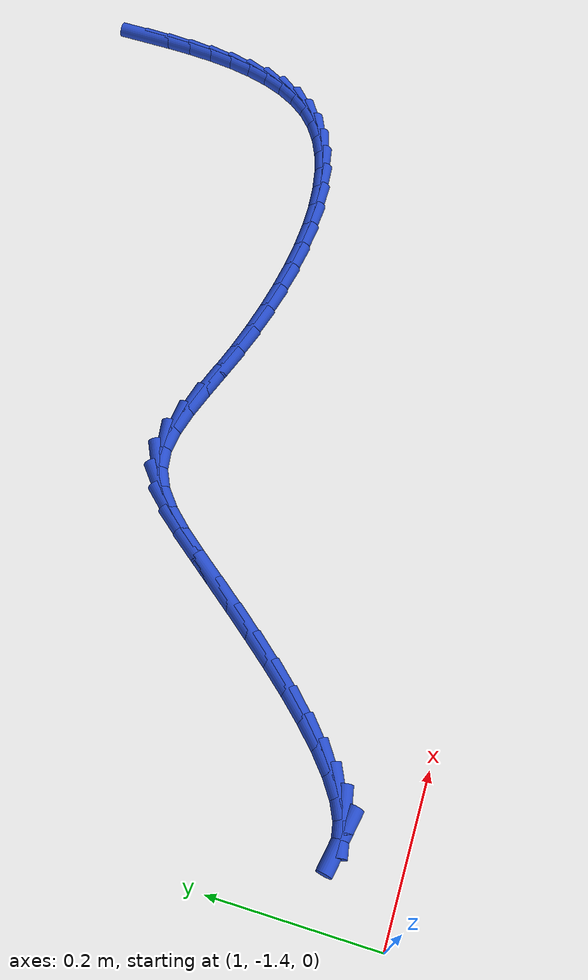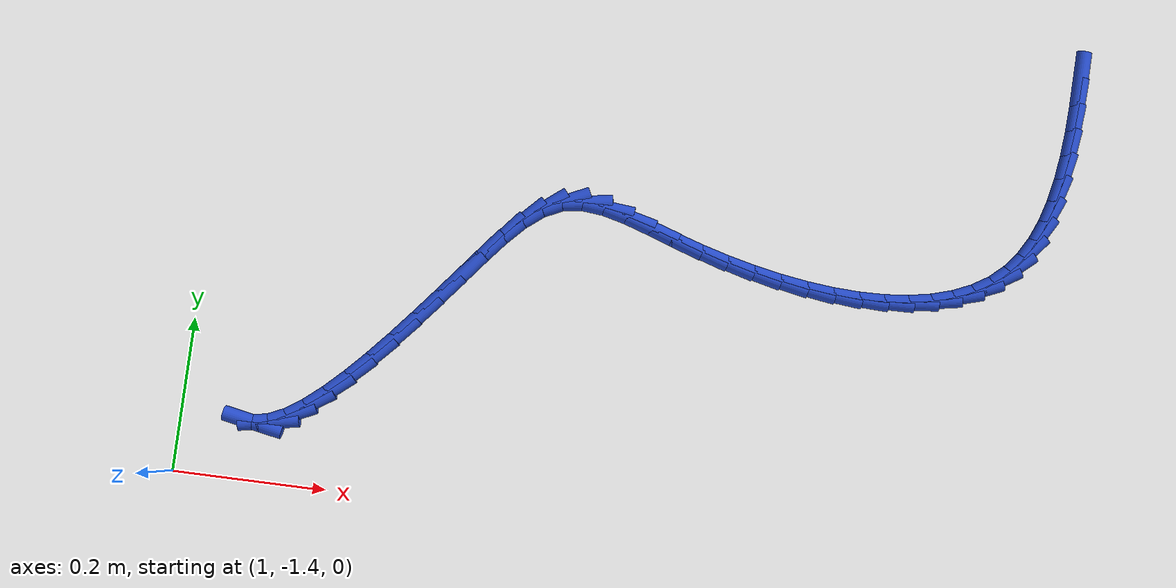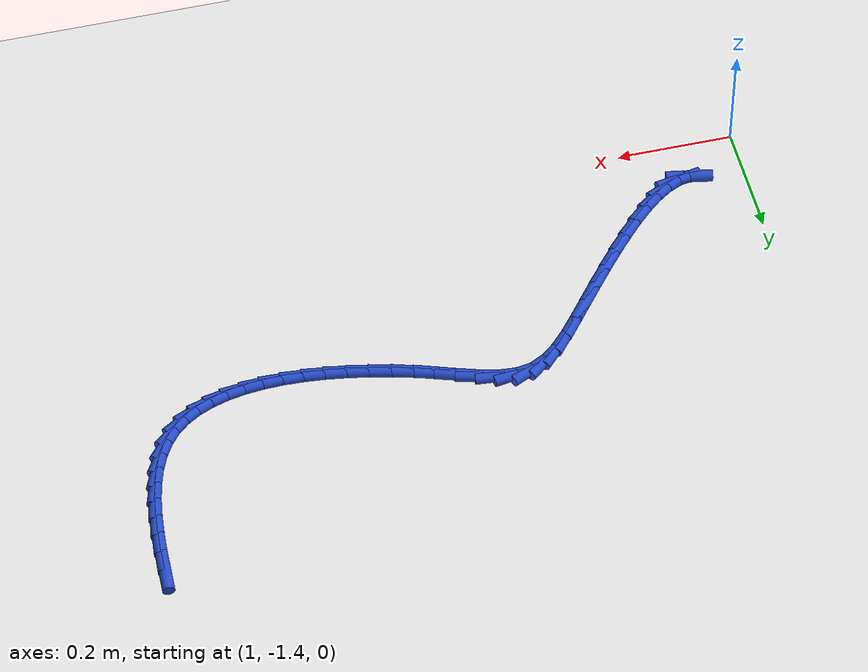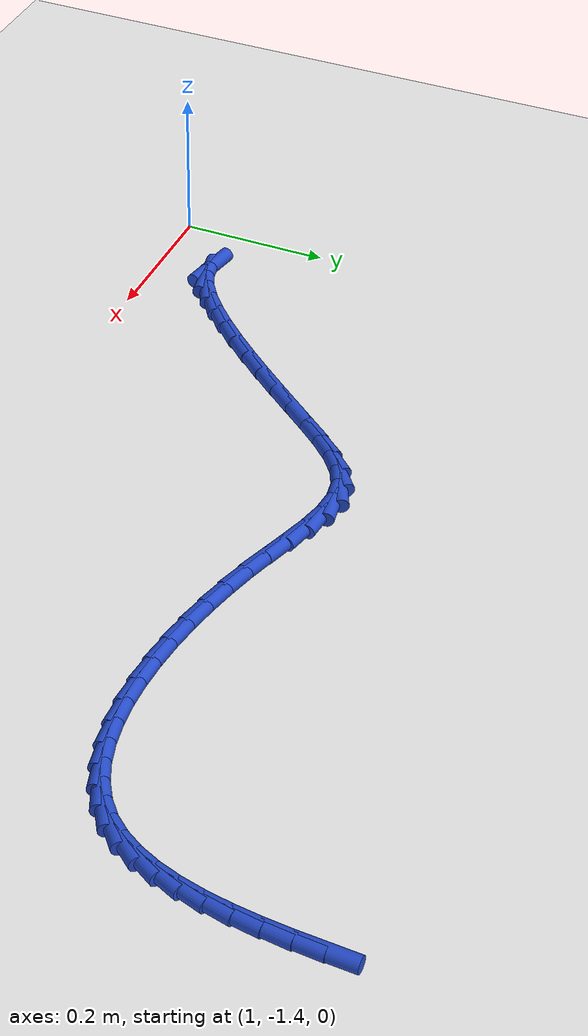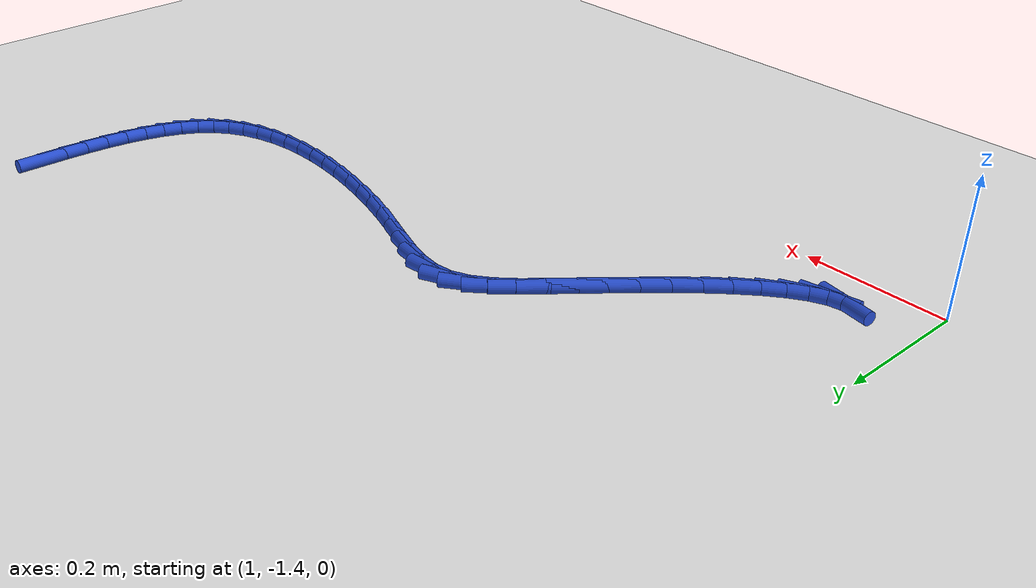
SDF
<sdf version="1.6">
 <world name="default">
  <model name="ground_plane">
   <static>1</static>
   <link name="link">
    <collision name="collision">
     <geometry><plane><normal>0 0 1</normal><size>100 100</size></plane></geometry>
     <surface><friction><ode><mu>100</mu><mu2>50</mu2></ode></friction></surface>
    </collision>
    <visual name="visual">
     <cast_shadows>0</cast_shadows>
     <geometry><plane><normal>0 0 1</normal><size>100 100</size></plane></geometry>
     <material>
      <script><uri>file://media/materials/scripts/gazebo.material</uri><name>Gazebo/WhiteGlow</name></script>
     </material>
    </visual>
   </link>
  </model>
  <model name="line">
   <link name="link_150">
    <pose>2.1129412333218065 -0.7456355610300089 0.01 0 1.57 1.546474756460688</pose>
    <collision name="collision">
     <geometry><cylinder><radius>0.01</radius><length>0.08</length></cylinder></geometry>
    </collision>
    <visual name="visual">
     <material>
      <script><name>Gazebo/Blue</name><uri>file://media/materials/scripts/gazebo.material</uri></script>
     </material>
     <geometry><cylinder><radius>0.01</radius><length>0.08</length></cylinder></geometry>
    </visual>
   </link>
   <link name="link_151">
    <pose>2.1120924041627407 -0.7805289404053501 0.01 0 1.57 1.517941068026042</pose>
    <collision name="collision">
     <geometry><cylinder><radius>0.01</radius><length>0.08</length></cylinder></geometry>
    </collision>
    <visual name="visual">
     <material>
      <script><name>Gazebo/Blue</name><uri>file://media/materials/scripts/gazebo.material</uri></script>
     </material>
     <geometry><cylinder><radius>0.01</radius><length>0.08</length></cylinder></geometry>
    </visual>
   </link>
   <link name="link_152">
    <pose>2.1102846867259415 -0.8146983640644665 0.01 0 1.57 1.478950274529012</pose>
    <collision name="collision">
     <geometry><cylinder><radius>0.01</radius><length>0.08</length></cylinder></geometry>
    </collision>
    <visual name="visual">
     <material>
      <script><name>Gazebo/Blue</name><uri>file://media/materials/scripts/gazebo.material</uri></script>
     </material>
     <geometry><cylinder><radius>0.01</radius><length>0.08</length></cylinder></geometry>
    </visual>
   </link>
   <link name="link_153">
    <pose>2.107233101355908 -0.8478298892119022 0.01 0 1.57 1.4276512588641737</pose>
    <collision name="collision">
     <geometry><cylinder><radius>0.01</radius><length>0.08</length></cylinder></geometry>
    </collision>
    <visual name="visual">
     <material>
      <script><name>Gazebo/Blue</name><uri>file://media/materials/scripts/gazebo.material</uri></script>
     </material>
     <geometry><cylinder><radius>0.01</radius><length>0.08</length></cylinder></geometry>
    </visual>
   </link>
   <link name="link_154">
    <pose>2.102652668397136 -0.8796095730522001 0.01 0 1.57 1.3615680062993154</pose>
    <collision name="collision">
     <geometry><cylinder><radius>0.01</radius><length>0.08</length></cylinder></geometry>
    </collision>
    <visual name="visual">
     <material>
      <script><name>Gazebo/Blue</name><uri>file://media/materials/scripts/gazebo.material</uri></script>
     </material>
     <geometry><cylinder><radius>0.01</radius><length>0.08</length></cylinder></geometry>
    </visual>
   </link>
   <link name="link_155">
    <pose>2.096258408194124 -0.909723472789904 0.01 0 1.57 1.2776181634800723</pose>
    <collision name="collision">
     <geometry><cylinder><radius>0.01</radius><length>0.08</length></cylinder></geometry>
    </collision>
    <visual name="visual">
     <material>
      <script><name>Gazebo/Blue</name><uri>file://media/materials/scripts/gazebo.material</uri></script>
     </material>
     <geometry><cylinder><radius>0.01</radius><length>0.08</length></cylinder></geometry>
    </visual>
   </link>
   <link name="link_156">
    <pose>2.08776534109137 -0.9378576456295582 0.01 0 1.57 1.1723842745373065</pose>
    <collision name="collision">
     <geometry><cylinder><radius>0.01</radius><length>0.08</length></cylinder></geometry>
    </collision>
    <visual name="visual">
     <material>
      <script><name>Gazebo/Blue</name><uri>file://media/materials/scripts/gazebo.material</uri></script>
     </material>
     <geometry><cylinder><radius>0.01</radius><length>0.08</length></cylinder></geometry>
    </visual>
   </link>
   <link name="link_157">
    <pose>2.076888487433372 -0.9636981487757048 0.01 0 1.57 1.0429434872162242</pose>
    <collision name="collision">
     <geometry><cylinder><radius>0.01</radius><length>0.08</length></cylinder></geometry>
    </collision>
    <visual name="visual">
     <material>
      <script><name>Gazebo/Blue</name><uri>file://media/materials/scripts/gazebo.material</uri></script>
     </material>
     <geometry><cylinder><radius>0.01</radius><length>0.08</length></cylinder></geometry>
    </visual>
   </link>
   <link name="link_158">
    <pose>2.0633428675646277 -0.9869310394328884 0.01 0 1.57 0.8885863723857401</pose>
    <collision name="collision">
     <geometry><cylinder><radius>0.01</radius><length>0.08</length></cylinder></geometry>
    </collision>
    <visual name="visual">
     <material>
      <script><name>Gazebo/Blue</name><uri>file://media/materials/scripts/gazebo.material</uri></script>
     </material>
     <geometry><cylinder><radius>0.01</radius><length>0.08</length></cylinder></geometry>
    </visual>
   </link>
   <link name="link_159">
    <pose>2.0468435018296347 -1.007242374805652 0.01 0 1.57 0.7158832035427021</pose>
    <collision name="collision">
     <geometry><cylinder><radius>0.01</radius><length>0.08</length></cylinder></geometry>
    </collision>
    <visual name="visual">
     <material>
      <script><name>Gazebo/Blue</name><uri>file://media/materials/scripts/gazebo.material</uri></script>
     </material>
     <geometry><cylinder><radius>0.01</radius><length>0.08</length></cylinder></geometry>
    </visual>
   </link>
   <link name="link_160">
    <pose>2.0271608304048225 -1.0243625676851322 0.01 0 1.57 0.5512406583729766</pose>
    <collision name="collision">
     <geometry><cylinder><radius>0.01</radius><length>0.08</length></cylinder></geometry>
    </collision>
    <visual name="visual">
     <material>
      <script><name>Gazebo/Blue</name><uri>file://media/materials/scripts/gazebo.material</uri></script>
     </material>
     <geometry><cylinder><radius>0.01</radius><length>0.08</length></cylinder></geometry>
    </visual>
   </link>
   <link name="link_161">
    <pose>2.00444686297409 -1.0383274222492653 0.01 0 1.57 0.4073539535871365</pose>
    <collision name="collision">
     <geometry><cylinder><radius>0.01</radius><length>0.08</length></cylinder></geometry>
    </collision>
    <visual name="visual">
     <material>
      <script><name>Gazebo/Blue</name><uri>file://media/materials/scripts/gazebo.material</uri></script>
     </material>
     <geometry><cylinder><radius>0.01</radius><length>0.08</length></cylinder></geometry>
    </visual>
   </link>
   <link name="link_162">
    <pose>1.979014250299011 -1.0493013127019648 0.01 0 1.57 0.28473135675628813</pose>
    <collision name="collision">
     <geometry><cylinder><radius>0.01</radius><length>0.08</length></cylinder></geometry>
    </collision>
    <visual name="visual">
     <material>
      <script><name>Gazebo/Blue</name><uri>file://media/materials/scripts/gazebo.material</uri></script>
     </material>
     <geometry><cylinder><radius>0.01</radius><length>0.08</length></cylinder></geometry>
    </visual>
   </link>
   <link name="link_163">
    <pose>1.9511762032568567 -1.0574490615390209 0.01 0 1.57 0.18129434952298823</pose>
    <collision name="collision">
     <geometry><cylinder><radius>0.01</radius><length>0.08</length></cylinder></geometry>
    </collision>
    <visual name="visual">
     <material>
      <script><name>Gazebo/Blue</name><uri>file://media/materials/scripts/gazebo.material</uri></script>
     </material>
     <geometry><cylinder><radius>0.01</radius><length>0.08</length></cylinder></geometry>
    </visual>
   </link>
   <link name="link_164">
    <pose>1.9212459327248992 -1.0629354912562228 0.01 0 1.57 0.0940140746038788</pose>
    <collision name="collision">
     <geometry><cylinder><radius>0.01</radius><length>0.08</length></cylinder></geometry>
    </collision>
    <visual name="visual">
     <material>
      <script><name>Gazebo/Blue</name><uri>file://media/materials/scripts/gazebo.material</uri></script>
     </material>
     <geometry><cylinder><radius>0.01</radius><length>0.08</length></cylinder></geometry>
    </visual>
   </link>
   <link name="link_165">
    <pose>1.8895366495804098 -1.0659254243493597 0.01 0 1.57 0.019839364430289108</pose>
    <collision name="collision">
     <geometry><cylinder><radius>0.01</radius><length>0.08</length></cylinder></geometry>
    </collision>
    <visual name="visual">
     <material>
      <script><name>Gazebo/Blue</name><uri>file://media/materials/scripts/gazebo.material</uri></script>
     </material>
     <geometry><cylinder><radius>0.01</radius><length>0.08</length></cylinder></geometry>
    </visual>
   </link>
   <link name="link_166">
    <pose>1.8563615647006615 -1.0665836833142208 0.01 0 1.57 -0.04391857488852035</pose>
    <collision name="collision">
     <geometry><cylinder><radius>0.01</radius><length>0.08</length></cylinder></geometry>
    </collision>
    <visual name="visual">
     <material>
      <script><name>Gazebo/Blue</name><uri>file://media/materials/scripts/gazebo.material</uri></script>
     </material>
     <geometry><cylinder><radius>0.01</radius><length>0.08</length></cylinder></geometry>
    </visual>
   </link>
   <link name="link_167">
    <pose>1.8220338889629257 -1.065075090646596 0.01 0 1.57 -0.09949736617803581</pose>
    <collision name="collision">
     <geometry><cylinder><radius>0.01</radius><length>0.08</length></cylinder></geometry>
    </collision>
    <visual name="visual">
     <material>
      <script><name>Gazebo/Blue</name><uri>file://media/materials/scripts/gazebo.material</uri></script>
     </material>
     <geometry><cylinder><radius>0.01</radius><length>0.08</length></cylinder></geometry>
    </visual>
   </link>
   <link name="link_168">
    <pose>1.786866833244475 -1.0615644688422745 0.01 0 1.57 -0.14872128859628608</pose>
    <collision name="collision">
     <geometry><cylinder><radius>0.01</radius><length>0.08</length></cylinder></geometry>
    </collision>
    <visual name="visual">
     <material>
      <script><name>Gazebo/Blue</name><uri>file://media/materials/scripts/gazebo.material</uri></script>
     </material>
     <geometry><cylinder><radius>0.01</radius><length>0.08</length></cylinder></geometry>
    </visual>
   </link>
   <link name="link_169">
    <pose>1.75117360842258 -1.0562166403970457 0.01 0 1.57 -0.19307977196396972</pose>
    <collision name="collision">
     <geometry><cylinder><radius>0.01</radius><length>0.08</length></cylinder></geometry>
    </collision>
    <visual name="visual">
     <material>
      <script><name>Gazebo/Blue</name><uri>file://media/materials/scripts/gazebo.material</uri></script>
     </material>
     <geometry><cylinder><radius>0.01</radius><length>0.08</length></cylinder></geometry>
    </visual>
   </link>
   <link name="link_170">
    <pose>1.7152674253745133 -1.0491964278066983 0.01 0 1.57 -0.2338106481693453</pose>
    <collision name="collision">
     <geometry><cylinder><radius>0.01</radius><length>0.08</length></cylinder></geometry>
    </collision>
    <visual name="visual">
     <material>
      <script><name>Gazebo/Blue</name><uri>file://media/materials/scripts/gazebo.material</uri></script>
     </material>
     <geometry><cylinder><radius>0.01</radius><length>0.08</length></cylinder></geometry>
    </visual>
   </link>
   <link name="link_171">
    <pose>1.6794614949775473 -1.0406686535670229 0.01 0 1.57 -0.2719767002915267</pose>
    <collision name="collision">
     <geometry><cylinder><radius>0.01</radius><length>0.08</length></cylinder></geometry>
    </collision>
    <visual name="visual">
     <material>
      <script><name>Gazebo/Blue</name><uri>file://media/materials/scripts/gazebo.material</uri></script>
     </material>
     <geometry><cylinder><radius>0.01</radius><length>0.08</length></cylinder></geometry>
    </visual>
   </link>
   <link name="link_172">
    <pose>1.6440690281089516 -1.0307981401738076 0.01 0 1.57 -0.3085235119712661</pose>
    <collision name="collision">
     <geometry><cylinder><radius>0.01</radius><length>0.08</length></cylinder></geometry>
    </collision>
    <visual name="visual">
     <material>
      <script><name>Gazebo/Blue</name><uri>file://media/materials/scripts/gazebo.material</uri></script>
     </material>
     <geometry><cylinder><radius>0.01</radius><length>0.08</length></cylinder></geometry>
    </visual>
   </link>
   <link name="link_173">
    <pose>1.6094032212393148 -1.0197501376978135 0.01 0 1.57 -0.33376533481258314</pose>
    <collision name="collision">
     <geometry><cylinder><radius>0.01</radius><length>0.08</length></cylinder></geometry>
    </collision>
    <visual name="visual">
     <material>
      <script><name>Gazebo/Blue</name><uri>file://media/materials/scripts/gazebo.material</uri></script>
     </material>
     <geometry><cylinder><radius>0.01</radius><length>0.08</length></cylinder></geometry>
    </visual>
   </link>
   <link name="link_174">
    <pose>1.575763920050237 -1.0080861333035158 0.01 0 1.57 -0.3163152477539752</pose>
    <collision name="collision">
     <geometry><cylinder><radius>0.01</radius><length>0.08</length></cylinder></geometry>
    </collision>
    <visual name="visual">
     <material>
      <script><name>Gazebo/Blue</name><uri>file://media/materials/scripts/gazebo.material</uri></script>
     </material>
     <geometry><cylinder><radius>0.01</radius><length>0.08</length></cylinder></geometry>
    </visual>
   </link>
   <link name="link_175">
    <pose>1.543412900458766 -0.9974974839239825 0.01 0 1.57 -0.24253140029561432</pose>
    <collision name="collision">
     <geometry><cylinder><radius>0.01</radius><length>0.08</length></cylinder></geometry>
    </collision>
    <visual name="visual">
     <material>
      <script><name>Gazebo/Blue</name><uri>file://media/materials/scripts/gazebo.material</uri></script>
     </material>
     <geometry><cylinder><radius>0.01</radius><length>0.08</length></cylinder></geometry>
    </visual>
   </link>
   <link name="link_176">
    <pose>1.5126051972516479 -0.989875616007517 0.01 0 1.57 -0.09498124161941808</pose>
    <collision name="collision">
     <geometry><cylinder><radius>0.01</radius><length>0.08</length></cylinder></geometry>
    </collision>
    <visual name="visual">
     <material>
      <script><name>Gazebo/Blue</name><uri>file://media/materials/scripts/gazebo.material</uri></script>
     </material>
     <geometry><cylinder><radius>0.01</radius><length>0.08</length></cylinder></geometry>
    </visual>
   </link>
   <link name="link_177">
    <pose>1.4835958452156273 -0.987111956002423 0.01 0 1.57 0.14674158364329487</pose>
    <collision name="collision">
     <geometry><cylinder><radius>0.01</radius><length>0.08</length></cylinder></geometry>
    </collision>
    <visual name="visual">
     <material>
      <script><name>Gazebo/Blue</name><uri>file://media/materials/scripts/gazebo.material</uri></script>
     </material>
     <geometry><cylinder><radius>0.01</radius><length>0.08</length></cylinder></geometry>
    </visual>
   </link>
   <link name="link_178">
    <pose>1.4566393681363503 -0.9910962311982393 0.01 0 1.57 0.44208604405584384</pose>
    <collision name="collision">
     <geometry><cylinder><radius>0.01</radius><length>0.08</length></cylinder></geometry>
    </collision>
    <visual name="visual">
     <material>
      <script><name>Gazebo/Blue</name><uri>file://media/materials/scripts/gazebo.material</uri></script>
     </material>
     <geometry><cylinder><radius>0.01</radius><length>0.08</length></cylinder></geometry>
    </visual>
   </link>
   <link name="link_179">
    <pose>1.4317389386279022 -1.0028823868339072 0.01 0 1.57 0.6659064863147269</pose>
    <collision name="collision">
     <geometry><cylinder><radius>0.01</radius><length>0.08</length></cylinder></geometry>
    </collision>
    <visual name="visual">
     <material>
      <script><name>Gazebo/Blue</name><uri>file://media/materials/scripts/gazebo.material</uri></script>
     </material>
     <geometry><cylinder><radius>0.01</radius><length>0.08</length></cylinder></geometry>
    </visual>
   </link>
   <link name="link_180">
    <pose>1.4082414933263832 -1.0213422806412638 0.01 0 1.57 0.8026097560147912</pose>
    <collision name="collision">
     <geometry><cylinder><radius>0.01</radius><length>0.08</length></cylinder></geometry>
    </collision>
    <visual name="visual">
     <material>
      <script><name>Gazebo/Blue</name><uri>file://media/materials/scripts/gazebo.material</uri></script>
     </material>
     <geometry><cylinder><radius>0.01</radius><length>0.08</length></cylinder></geometry>
    </visual>
   </link>
   <link name="link_181">
    <pose>1.3853882097395411 -1.0449961046701723 0.01 0 1.57 0.8725893538672518</pose>
    <collision name="collision">
     <geometry><cylinder><radius>0.01</radius><length>0.08</length></cylinder></geometry>
    </collision>
    <visual name="visual">
     <material>
      <script><name>Gazebo/Blue</name><uri>file://media/materials/scripts/gazebo.material</uri></script>
     </material>
     <geometry><cylinder><radius>0.01</radius><length>0.08</length></cylinder></geometry>
    </visual>
   </link>
   <link name="link_182">
    <pose>1.362420265375127 -1.0723640509704946 0.01 0 1.57 0.8939527697552536</pose>
    <collision name="collision">
     <geometry><cylinder><radius>0.01</radius><length>0.08</length></cylinder></geometry>
    </collision>
    <visual name="visual">
     <material>
      <script><name>Gazebo/Blue</name><uri>file://media/materials/scripts/gazebo.material</uri></script>
     </material>
     <geometry><cylinder><radius>0.01</radius><length>0.08</length></cylinder></geometry>
    </visual>
   </link>
   <link name="link_183">
    <pose>1.338617274147672 -1.1019898766692235 0.01 0 1.57 0.8928186786376509</pose>
    <collision name="collision">
     <geometry><cylinder><radius>0.01</radius><length>0.08</length></cylinder></geometry>
    </collision>
    <visual name="visual">
     <material>
      <script><name>Gazebo/Blue</name><uri>file://media/materials/scripts/gazebo.material</uri></script>
     </material>
     <geometry><cylinder><radius>0.01</radius><length>0.08</length></cylinder></geometry>
    </visual>
   </link>
   <link name="link_184">
    <pose>1.3138309182506192 -1.1327680697301852 0.01 0 1.57 0.8843236767195706</pose>
    <collision name="collision">
     <geometry><cylinder><radius>0.01</radius><length>0.08</length></cylinder></geometry>
    </collision>
    <visual name="visual">
     <material>
      <script><name>Gazebo/Blue</name><uri>file://media/materials/scripts/gazebo.material</uri></script>
     </material>
     <geometry><cylinder><radius>0.01</radius><length>0.08</length></cylinder></geometry>
    </visual>
   </link>
   <link name="link_185">
    <pose>1.288351702288641 -1.1638621568966419 0.01 0 1.57 0.8686409355926027</pose>
    <collision name="collision">
     <geometry><cylinder><radius>0.01</radius><length>0.08</length></cylinder></geometry>
    </collision>
    <visual name="visual">
     <material>
      <script><name>Gazebo/Blue</name><uri>file://media/materials/scripts/gazebo.material</uri></script>
     </material>
     <geometry><cylinder><radius>0.01</radius><length>0.08</length></cylinder></geometry>
    </visual>
   </link>
   <link name="link_186">
    <pose>1.2624813293408987 -1.194442530613858 0.01 0 1.57 0.8447019329415003</pose>
    <collision name="collision">
     <geometry><cylinder><radius>0.01</radius><length>0.08</length></cylinder></geometry>
    </collision>
    <visual name="visual">
     <material>
      <script><name>Gazebo/Blue</name><uri>file://media/materials/scripts/gazebo.material</uri></script>
     </material>
     <geometry><cylinder><radius>0.01</radius><length>0.08</length></cylinder></geometry>
    </visual>
   </link>
   <link name="link_187">
    <pose>1.2365215024865566 -1.223679583327101 0.01 0 1.57 0.8103220685613786</pose>
    <collision name="collision">
     <geometry><cylinder><radius>0.01</radius><length>0.08</length></cylinder></geometry>
    </collision>
    <visual name="visual">
     <material>
      <script><name>Gazebo/Blue</name><uri>file://media/materials/scripts/gazebo.material</uri></script>
     </material>
     <geometry><cylinder><radius>0.01</radius><length>0.08</length></cylinder></geometry>
    </visual>
   </link>
   <link name="link_188">
    <pose>1.2107739248047749 -1.2507437074816372 0.01 0 1.57 0.7616267557244115</pose>
    <collision name="collision">
     <geometry><cylinder><radius>0.01</radius><length>0.08</length></cylinder></geometry>
    </collision>
    <visual name="visual">
     <material>
      <script><name>Gazebo/Blue</name><uri>file://media/materials/scripts/gazebo.material</uri></script>
     </material>
     <geometry><cylinder><radius>0.01</radius><length>0.08</length></cylinder></geometry>
    </visual>
   </link>
   <link name="link_189">
    <pose>1.1855402993747182 -1.2748052955227314 0.01 0 1.57 0.6918585355712126</pose>
    <collision name="collision">
     <geometry><cylinder><radius>0.01</radius><length>0.08</length></cylinder></geometry>
    </collision>
    <visual name="visual">
     <material>
      <script><name>Gazebo/Blue</name><uri>file://media/materials/scripts/gazebo.material</uri></script>
     </material>
     <geometry><cylinder><radius>0.01</radius><length>0.08</length></cylinder></geometry>
    </visual>
   </link>
   <link name="link_190">
    <pose>1.1611223292755481 -1.2950347398956503 0.01 0 1.57 0.5890107076492563</pose>
    <collision name="collision">
     <geometry><cylinder><radius>0.01</radius><length>0.08</length></cylinder></geometry>
    </collision>
    <visual name="visual">
     <material>
      <script><name>Gazebo/Blue</name><uri>file://media/materials/scripts/gazebo.material</uri></script>
     </material>
     <geometry><cylinder><radius>0.01</radius><length>0.08</length></cylinder></geometry>
    </visual>
   </link>
   <link name="link_191">
    <pose>1.1378217175864274 -1.3106024330456603 0.01 0 1.57 0.4315468342785062</pose>
    <collision name="collision">
     <geometry><cylinder><radius>0.01</radius><length>0.08</length></cylinder></geometry>
    </collision>
    <visual name="visual">
     <material>
      <script><name>Gazebo/Blue</name><uri>file://media/materials/scripts/gazebo.material</uri></script>
     </material>
     <geometry><cylinder><radius>0.01</radius><length>0.08</length></cylinder></geometry>
    </visual>
   </link>
   <link name="link_192">
    <pose>1.1159401673865186 -1.3206787674180274 0.01 0 1.57 0.18416034622481553</pose>
    <collision name="collision">
     <geometry><cylinder><radius>0.01</radius><length>0.08</length></cylinder></geometry>
    </collision>
    <visual name="visual">
     <material>
      <script><name>Gazebo/Blue</name><uri>file://media/materials/scripts/gazebo.material</uri></script>
     </material>
     <geometry><cylinder><radius>0.01</radius><length>0.08</length></cylinder></geometry>
    </visual>
   </link>
   <link name="link_193">
    <pose>1.095779381754984 -1.3244341354580171 0.01 0 1.57 -0.18504189990220596</pose>
    <collision name="collision">
     <geometry><cylinder><radius>0.01</radius><length>0.08</length></cylinder></geometry>
    </collision>
    <visual name="visual">
     <material>
      <script><name>Gazebo/Blue</name><uri>file://media/materials/scripts/gazebo.material</uri></script>
     </material>
     <geometry><cylinder><radius>0.01</radius><length>0.08</length></cylinder></geometry>
    </visual>
   </link>
  </model>
 </world>
</sdf>
